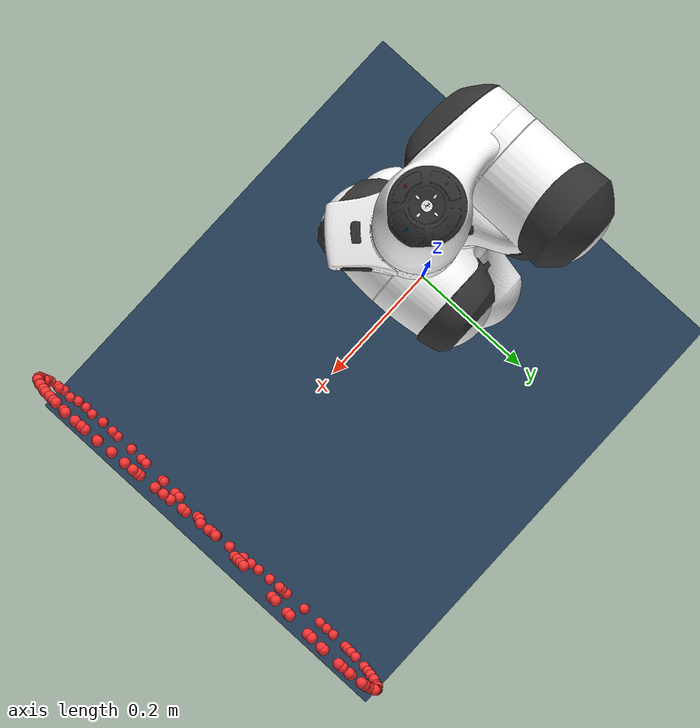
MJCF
<mujoco model="fr3 scene">
  <include file="fr3.xml"/>

  <statistic center="0.2 0 0.4" extent=".8"/>

  <visual>
    <headlight diffuse="0.6 0.6 0.6" ambient="0.3 0.3 0.3" specular="0 0 0"/>
    <rgba haze="0.15 0.25 0.35 1"/>
    <global azimuth="120" elevation="-20"/>
  </visual>

  <asset>
    <texture type="skybox" builtin="gradient" rgb1="0.3 0.5 0.7" rgb2="0 0 0" width="512" height="3072"/>
    <texture type="2d" name="groundplane" builtin="checker" mark="edge" rgb1="0.2 0.3 0.4" rgb2="0.1 0.2 0.3"
      markrgb="0.8 0.8 0.8" width="300" height="300"/>
    <material name="groundplane" texture="groundplane" texuniform="true" texrepeat="5 5" reflectance="0.2"/>
  </asset>

  <worldbody>
  <!-- Calibrated circle markers: center=(0.5999, 0.0404, 0.5322), R=0.1005 -->
  <!-- === 固定散点可视化（工具尖端轨迹）=== -->
    <body name="trace_points"  mocap="true" pos="-0.15 0 0.15">
      <!-- 提示：size=0.006 为 6mm 半径；需要更细更密，可复制下列行或改 size/rgba -->
      <site type="sphere" size="0.006" rgba="1 0.2 0.2 1"     pos="0.5985 0.0496 0.5208"/>
      <site type="sphere" size="0.006" rgba="1 0.2 0.2 1"     pos="0.5986 0.0033 0.5668"/>
      <site type="sphere" size="0.006" rgba="1 0.2 0.2 1"     pos="0.5990 -0.0538 0.6212"/>
      <site type="sphere" size="0.006" rgba="1 0.2 0.2 1"     pos="0.5998 -0.1041 0.6558"/>
      <site type="sphere" size="0.006" rgba="1 0.2 0.2 1"     pos="0.6002 -0.1478 0.6612"/>
      <site type="sphere" size="0.006" rgba="1 0.2 0.2 1"     pos="0.6004 -0.1807 0.6369"/>
      <site type="sphere" size="0.006" rgba="1 0.2 0.2 1"     pos="0.6003 -0.2001 0.5893"/>
      <site type="sphere" size="0.006" rgba="1 0.2 0.2 1"     pos="0.6002 -0.2062 0.5289"/>
      <site type="sphere" size="0.006" rgba="1 0.2 0.2 1"     pos="0.6002 -0.1987 0.4690"/>
      <site type="sphere" size="0.006" rgba="1 0.2 0.2 1"     pos="0.6000 -0.1773 0.4222"/>
      <site type="sphere" size="0.006" rgba="1 0.2 0.2 1"     pos="0.5996 -0.1420 0.4000"/>
      <site type="sphere" size="0.006" rgba="1 0.2 0.2 1"     pos="0.5993 -0.0954 0.4110"/>
      <site type="sphere" size="0.006" rgba="1 0.2 0.2 1"     pos="0.5990 -0.0405 0.4536"/>
      <site type="sphere" size="0.006" rgba="1 0.2 0.2 1"     pos="0.5983 0.0194 0.5084"/>
      <site type="sphere" size="0.006" rgba="1 0.2 0.2 1"     pos="0.5980 0.0798 0.5695"/>
      <site type="sphere" size="0.006" rgba="1 0.2 0.2 1"     pos="0.5984 0.1372 0.6216"/>
      <site type="sphere" size="0.006" rgba="1 0.2 0.2 1"     pos="0.5990 0.1888 0.6534"/>
      <site type="sphere" size="0.006" rgba="1 0.2 0.2 1"     pos="0.5995 0.2322 0.6580"/>
      <site type="sphere" size="0.006" rgba="1 0.2 0.2 1"     pos="0.5998 0.2648 0.6341"/>
      <site type="sphere" size="0.006" rgba="1 0.2 0.2 1"     pos="0.5997 0.2849 0.5870"/>
      <site type="sphere" size="0.006" rgba="1 0.2 0.2 1"     pos="0.5996 0.2909 0.5279"/>
      <site type="sphere" size="0.006" rgba="1 0.2 0.2 1"     pos="0.5995 0.2830 0.4697"/>
      <site type="sphere" size="0.006" rgba="1 0.2 0.2 1"     pos="0.5996 0.2610 0.4254"/>
      <site type="sphere" size="0.006" rgba="1 0.2 0.2 1"     pos="0.5997 0.2261 0.4055"/>
      <site type="sphere" size="0.006" rgba="1 0.2 0.2 1"     pos="0.5995 0.1804 0.4151"/>
      <site type="sphere" size="0.006" rgba="1 0.2 0.2 1"     pos="0.5990 0.1266 0.4509"/>
      <site type="sphere" size="0.006" rgba="1 0.2 0.2 1"     pos="0.5986 0.0679 0.5052"/>
      <site type="sphere" size="0.006" rgba="1 0.2 0.2 1"     pos="0.5986 0.0082 0.5658"/>
      <site type="sphere" size="0.006" rgba="1 0.2 0.2 1"     pos="0.5988 -0.0509 0.6199"/>
      <site type="sphere" size="0.006" rgba="1 0.2 0.2 1"     pos="0.5994 -0.1053 0.6533"/>
      <site type="sphere" size="0.006" rgba="1 0.2 0.2 1"     pos="0.5997 -0.1506 0.6583"/>
      <site type="sphere" size="0.006" rgba="1 0.2 0.2 1"     pos="0.5998 -0.1845 0.6343"/>
      <site type="sphere" size="0.006" rgba="1 0.2 0.2 1"     pos="0.6001 -0.2040 0.5865"/>
      <site type="sphere" size="0.006" rgba="1 0.2 0.2 1"     pos="0.6001 -0.2096 0.5268"/>
      <site type="sphere" size="0.006" rgba="1 0.2 0.2 1"     pos="0.5999 -0.2007 0.4682"/>
      <site type="sphere" size="0.006" rgba="1 0.2 0.2 1"     pos="0.5998 -0.1779 0.4244"/>
      <site type="sphere" size="0.006" rgba="1 0.2 0.2 1"     pos="0.5997 -0.1421 0.4056"/>
      <site type="sphere" size="0.006" rgba="1 0.2 0.2 1"     pos="0.5994 -0.0947 0.4166"/>
      <site type="sphere" size="0.006" rgba="1 0.2 0.2 1"     pos="0.5988 -0.0386 0.4550"/>
      <site type="sphere" size="0.006" rgba="1 0.2 0.2 1"     pos="0.5980 0.0225 0.5124"/>
      <site type="sphere" size="0.006" rgba="1 0.2 0.2 1"     pos="0.5977 0.0840 0.5745"/>
      <site type="sphere" size="0.006" rgba="1 0.2 0.2 1"     pos="0.5982 0.1422 0.6261"/>
      <site type="sphere" size="0.006" rgba="1 0.2 0.2 1"     pos="0.5989 0.1942 0.6558"/>
      <site type="sphere" size="0.006" rgba="1 0.2 0.2 1"     pos="0.5996 0.2372 0.6562"/>
      <site type="sphere" size="0.006" rgba="1 0.2 0.2 1"     pos="0.5998 0.2688 0.6281"/>
      <site type="sphere" size="0.006" rgba="1 0.2 0.2 1"     pos="0.5997 0.2870 0.5771"/>
      <site type="sphere" size="0.006" rgba="1 0.2 0.2 1"     pos="0.5995 0.2907 0.5159"/>
      <site type="sphere" size="0.006" rgba="1 0.2 0.2 1"     pos="0.5995 0.2793 0.4585"/>
      <site type="sphere" size="0.006" rgba="1 0.2 0.2 1"     pos="0.5996 0.2539 0.4183"/>
      <site type="sphere" size="0.006" rgba="1 0.2 0.2 1"     pos="0.5996 0.2154 0.4050"/>
      <site type="sphere" size="0.006" rgba="1 0.2 0.2 1"     pos="0.5993 0.1527 0.4312"/>
      <site type="sphere" size="0.006" rgba="1 0.2 0.2 1"     pos="0.5988 0.1097 0.4654"/>
      <site type="sphere" size="0.006" rgba="1 0.2 0.2 1"     pos="0.5985 0.0491 0.5243"/>
      <site type="sphere" size="0.006" rgba="1 0.2 0.2 1"     pos="0.5987 -0.0118 0.5850"/>
      <site type="sphere" size="0.006" rgba="1 0.2 0.2 1"     pos="0.5991 -0.0700 0.6334"/>
      <site type="sphere" size="0.006" rgba="1 0.2 0.2 1"     pos="0.5997 -0.1215 0.6579"/>
      <site type="sphere" size="0.006" rgba="1 0.2 0.2 1"     pos="0.5998 -0.1631 0.6533"/>
      <site type="sphere" size="0.006" rgba="1 0.2 0.2 1"     pos="0.5998 -0.1924 0.6206"/>
      <site type="sphere" size="0.006" rgba="1 0.2 0.2 1"     pos="0.5998 -0.2075 0.5674"/>
      <site type="sphere" size="0.006" rgba="1 0.2 0.2 1"     pos="0.5998 -0.2082 0.5063"/>
      <site type="sphere" size="0.006" rgba="1 0.2 0.2 1"     pos="0.5998 -0.1947 0.4513"/>
      <site type="sphere" size="0.006" rgba="1 0.2 0.2 1"     pos="0.5997 -0.1676 0.4151"/>
      <site type="sphere" size="0.006" rgba="1 0.2 0.2 1"     pos="0.6001 -0.1266 0.4035"/>
      <site type="sphere" size="0.006" rgba="1 0.2 0.2 1"     pos="0.5991 -0.0772 0.4270"/>
      <site type="sphere" size="0.006" rgba="1 0.2 0.2 1"     pos="0.5984 -0.0188 0.4731"/>
      <site type="sphere" size="0.006" rgba="1 0.2 0.2 1"     pos="0.5977 0.0429 0.5340"/>
      <site type="sphere" size="0.006" rgba="1 0.2 0.2 1"     pos="0.5976 0.0889 0.5799"/>
      <site type="sphere" size="0.006" rgba="1 0.2 0.2 1"     pos="0.5984 0.1594 0.6385"/>
      <site type="sphere" size="0.006" rgba="1 0.2 0.2 1"     pos="0.5991 0.2080 0.6592"/>
      <site type="sphere" size="0.006" rgba="1 0.2 0.2 1"     pos="0.5997 0.2473 0.6511"/>
      <site type="sphere" size="0.006" rgba="1 0.2 0.2 1"     pos="0.5998 0.2750 0.6164"/>
      <site type="sphere" size="0.006" rgba="1 0.2 0.2 1"     pos="0.5996 0.2894 0.5628"/>
      <site type="sphere" size="0.006" rgba="1 0.2 0.2 1"     pos="0.5995 0.2873 0.4878"/>
      <site type="sphere" size="0.006" rgba="1 0.2 0.2 1"     pos="0.5996 0.2478 0.4138"/>
      <site type="sphere" size="0.006" rgba="1 0.2 0.2 1"     pos="0.5994 0.1810 0.4146"/>
      <site type="sphere" size="0.006" rgba="1 0.2 0.2 1"     pos="0.5992 0.1451 0.4364"/>
      <site type="sphere" size="0.006" rgba="1 0.2 0.2 1"     pos="0.5987 0.0876 0.4858"/>
      <site type="sphere" size="0.006" rgba="1 0.2 0.2 1"     pos="0.5985 0.0278 0.5458"/>
      <site type="sphere" size="0.006" rgba="1 0.2 0.2 1"     pos="0.5988 -0.0314 0.6027"/>
      <site type="sphere" size="0.006" rgba="1 0.2 0.2 1"     pos="0.5993 -0.0867 0.6436"/>
      <site type="sphere" size="0.006" rgba="1 0.2 0.2 1"     pos="0.5997 -0.1346 0.6596"/>
      <site type="sphere" size="0.006" rgba="1 0.2 0.2 1"     pos="0.5999 -0.1725 0.6471"/>
      <site type="sphere" size="0.006" rgba="1 0.2 0.2 1"     pos="0.5997 -0.2016 0.5963"/>
      <site type="sphere" size="0.006" rgba="1 0.2 0.2 1"     pos="0.5996 -0.2090 0.5537"/>
      <site type="sphere" size="0.006" rgba="1 0.2 0.2 1"     pos="0.5997 -0.2066 0.4937"/>
      <site type="sphere" size="0.006" rgba="1 0.2 0.2 1"     pos="0.6020 -0.1862 0.4366"/>
      <site type="sphere" size="0.006" rgba="1 0.2 0.2 1"     pos="0.6017 -0.1583 0.4016"/>
      <site type="sphere" size="0.006" rgba="1 0.2 0.2 1"     pos="0.6007 -0.1185 0.4001"/>
      <site type="sphere" size="0.006" rgba="1 0.2 0.2 1"     pos="0.5991 -0.0696 0.4312"/>
      <site type="sphere" size="0.006" rgba="1 0.2 0.2 1"     pos="0.5982 -0.0119 0.4796"/>
      <site type="sphere" size="0.006" rgba="1 0.2 0.2 1"     pos="0.5976 0.0487 0.5399"/>
      <site type="sphere" size="0.006" rgba="1 0.2 0.2 1"     pos="0.5976 0.0936 0.5845"/>
      <site type="sphere" size="0.006" rgba="1 0.2 0.2 1"     pos="0.5985 0.1630 0.6408"/>
      <site type="sphere" size="0.006" rgba="1 0.2 0.2 1"     pos="0.5992 0.2110 0.6595"/>
      <site type="sphere" size="0.006" rgba="1 0.2 0.2 1"     pos="0.5998 0.2496 0.6495"/>
      <site type="sphere" size="0.006" rgba="1 0.2 0.2 1"     pos="0.5999 0.2709 0.6244"/>
      <site type="sphere" size="0.006" rgba="1 0.2 0.2 1"     pos="0.5997 0.2878 0.5733"/>
      <site type="sphere" size="0.006" rgba="1 0.2 0.2 1"     pos="0.5995 0.2913 0.5283"/>
      <site type="sphere" size="0.006" rgba="1 0.2 0.2 1"     pos="0.5995 0.2738 0.4454"/>
      <site type="sphere" size="0.006" rgba="1 0.2 0.2 1"     pos="0.5996 0.2454 0.4123"/>
      <site type="sphere" size="0.006" rgba="1 0.2 0.2 1"     pos="0.5996 0.2050 0.4063"/>
      <site type="sphere" size="0.006" rgba="1 0.2 0.2 1"     pos="0.5991 0.1413 0.4392"/>
      <site type="sphere" size="0.006" rgba="1 0.2 0.2 1"     pos="0.5987 0.0983 0.4758"/>
      <site type="sphere" size="0.006" rgba="1 0.2 0.2 1"     pos="0.5985 0.0386 0.5349"/>
      <site type="sphere" size="0.006" rgba="1 0.2 0.2 1"     pos="0.5987 -0.0209 0.5933"/>
      <site type="sphere" size="0.006" rgba="1 0.2 0.2 1"     pos="0.5991 -0.0597 0.6258"/>
      <site type="sphere" size="0.006" rgba="1 0.2 0.2 1"     pos="0.5996 -0.1267 0.6589"/>
      <site type="sphere" size="0.006" rgba="1 0.2 0.2 1"     pos="0.5999 -0.1664 0.6513"/>
      <site type="sphere" size="0.006" rgba="1 0.2 0.2 1"     pos="0.5998 -0.1939 0.6174"/>
    </body>

    <light pos="0 0 1.5" dir="0 0 -1" directional="true"/>
    <geom name="floor" size="0 0 0.05" type="plane" material="groundplane"/>
  </worldbody>
</mujoco>

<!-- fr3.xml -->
<mujoco model="fr3">
  <compiler angle="radian" meshdir="assets"/>

  <option integrator="implicitfast"/>

  <default>
    <default class="fr3">
      <!-- Overwritten in joints 5, 6, and 7. -->
      <joint damping="0.21" armature="0.195" frictionloss="1.137"/>
      <position inheritrange="1"/>
      <default class="visual">
        <geom type="mesh" group="2" contype="0" conaffinity="0"/>
      </default>
      <default class="collision">
        <geom type="mesh" group="3" mass="0" density="0"/>
      </default>
      <site size="0.001" rgba="0.5 0.5 0.5 0.3" group="4"/>
    </default>
  </default>

  <asset>
    <material name="black" rgba=".2 .2 .2 1"/>
    <material name="white" rgba="1 1 1 1"/>
    <material name="red" rgba="1 0.072272 0.039546 1"/>
    <material name="gray" rgba="0.863156 0.863156 0.863157 1"/>
    <material name="button_green" rgba="0.102241 0.571125 0.102242 1"/>
    <material name="button_red" rgba="0.520996 0.008023 0.013702 1"/>
    <material name="button_blue" rgba="0.024157 0.445201 0.737911 1"/>

    <mesh file="link0_0.obj"/>
    <mesh file="link0_1.obj"/>
    <mesh file="link0_2.obj"/>
    <mesh file="link0_3.obj"/>
    <mesh file="link0_4.obj"/>
    <mesh file="link0_5.obj"/>
    <mesh file="link0_6.obj"/>
    <mesh file="link1.obj"/>
    <mesh file="link2.obj"/>
    <mesh file="link3_0.obj"/>
    <mesh file="link3_1.obj"/>
    <mesh file="link4_0.obj"/>
    <mesh file="link4_1.obj"/>
    <mesh file="link5_0.obj"/>
    <mesh file="link5_1.obj"/>
    <mesh file="link5_2.obj"/>
    <mesh file="link6_0.obj"/>
    <mesh file="link6_1.obj"/>
    <mesh file="link6_2.obj"/>
    <mesh file="link6_3.obj"/>
    <mesh file="link6_4.obj"/>
    <mesh file="link6_5.obj"/>
    <mesh file="link6_6.obj"/>
    <mesh file="link6_7.obj"/>
    <mesh file="link7_0.obj"/>
    <mesh file="link7_1.obj"/>
    <mesh file="link7_2.obj"/>
    <mesh file="link7_3.obj"/>

    <mesh name="link0_coll" file="link0.stl"/>
    <mesh name="link1_coll" file="link1.stl"/>
    <mesh name="link2_coll" file="link2.stl"/>
    <mesh name="link3_coll" file="link3.stl"/>
    <mesh name="link4_coll" file="link4.stl"/>
    <mesh name="link5_coll" file="link5.stl"/>
    <mesh name="link6_coll" file="link6.stl"/>
    <mesh name="link7_coll" file="link7.stl"/>
  </asset>

  <worldbody>
  <!-- ======= 固定散点圈（纯视觉，标记FR3末端圆轨迹） ======= -->

    <body name="base" childclass="fr3">
      <body name="fr3_link0">
        <geom mesh="link0_0" material="black" class="visual"/>
        <geom mesh="link0_1" material="white" class="visual"/>
        <geom mesh="link0_2" material="white" class="visual"/>
        <geom mesh="link0_3" material="white" class="visual"/>
        <geom mesh="link0_4" material="white" class="visual"/>
        <geom mesh="link0_5" material="red" class="visual"/>
        <geom mesh="link0_6" material="black" class="visual"/>
        <geom name="fr3_link0_collision" mesh="link0_coll" class="collision"/>
        <body name="fr3_link1" pos="0 0 0.333">
          <inertial pos="4.128e-07 -0.0181251 -0.0386036" quat="0.998098 -0.0605364 0.00380499 0.0110109" mass="2.92747"
            diaginertia="0.0239286 0.0227246 0.00610634"/>
          <joint name="fr3_joint1" axis="0 0 1" range="-2.7437 2.7437" actuatorfrcrange="-87 87"/>
          <geom name="fr3_link1_collision" class="collision" mesh="link1_coll"/>
          <geom material="white" mesh="link1" class="visual"/>
          <body name="fr3_link2" quat="1 -1 0 0">
            <inertial pos="0.00318289 -0.0743222 0.00881461" quat="0.502599 0.584437 -0.465998 0.434366" mass="2.93554"
              diaginertia="0.0629567 0.0411924 0.0246371"/>
            <joint name="fr3_joint2" axis="0 0 1" range="-1.7837 1.7837" actuatorfrcrange="-87 87"/>
            <geom material="white" mesh="link2" class="visual"/>
            <geom name="fr3_link2_collision" class="collision" mesh="link2_coll"/>
            <body name="fr3_link3" pos="0 -0.316 0" quat="1 1 0 0">
              <inertial pos="0.0407016 -0.00482006 -0.0289731" quat="0.921025 -0.244161 0.155272 0.260745" mass="2.2449"
                diaginertia="0.0267409 0.0189869 0.0171587"/>
              <joint name="fr3_joint3" axis="0 0 1" range="-2.9007 2.9007" actuatorfrcrange="-87 87"/>
              <geom mesh="link3_0" material="white" class="visual"/>
              <geom mesh="link3_1" material="black" class="visual"/>
              <geom name="fr3_link3_collision" class="collision" mesh="link3_coll"/>
              <body name="fr3_link4" pos="0.0825 0 0" quat="1 1 0 0">
                <inertial pos="-0.0459101 0.0630493 -0.00851879" quat="0.438018 0.803311 0.00937812 0.403414"
                  mass="2.6156" diaginertia="0.05139 0.0372717 0.0160047"/>
                <joint name="fr3_joint4" axis="0 0 1" range="-3.0421 -0.1518" actuatorfrcrange="-87 87"/>
                <geom mesh="link4_0" material="white" class="visual"/>
                <geom mesh="link4_1" material="black" class="visual"/>
                <geom name="fr3_link4_collision" class="collision" mesh="link4_coll"/>
                <body name="fr3_link5" pos="-0.0825 0.384 0" quat="1 -1 0 0">
                  <inertial pos="-0.00160396 0.0292536 -0.0972966" quat="0.919031 0.125604 0.0751531 -0.366003"
                    mass="2.32712" diaginertia="0.0579335 0.0449144 0.0130634"/>
                  <joint name="fr3_joint5" axis="0 0 1" range="-2.8065 2.8065" actuatorfrcrange="-12 12"
                    armature="0.074" frictionloss="0.763"/>
                  <geom mesh="link5_0" material="white" class="visual"/>
                  <geom mesh="link5_1" material="white" class="visual"/>
                  <geom mesh="link5_2" material="black" class="visual"/>
                  <geom name="fr3_link5_collision" class="collision" mesh="link5_coll"/>
                  <body name="fr3_link6" quat="1 1 0 0">
                    <inertial pos="0.0597131 -0.0410295 -0.0101693" quat="0.621301 0.552665 0.510011 0.220081"
                      mass="1.81704" diaginertia="0.0175039 0.0161123 0.00193529"/>
                    <joint name="fr3_joint6" axis="0 0 1" range="0.5445 4.5169" actuatorfrcrange="-12 12"
                      armature="0.074" frictionloss="0.44"/>
                    <geom mesh="link6_0" material="button_green" class="visual"/>
                    <geom mesh="link6_1" material="white" class="visual"/>
                    <geom mesh="link6_2" material="white" class="visual"/>
                    <geom mesh="link6_3" material="gray" class="visual"/>
                    <geom mesh="link6_4" material="button_red" class="visual"/>
                    <geom mesh="link6_5" material="white" class="visual"/>
                    <geom mesh="link6_6" material="black" class="visual"/>
                    <geom mesh="link6_7" material="button_blue" class="visual"/>
                    <geom name="fr3_link6_collision" class="collision" mesh="link6_coll"/>
                    <body name="fr3_link7" pos="0.088 0 0" quat="1 1 0 0">
                      <inertial pos="0.00452258 0.00862619 -0.0161633" quat="0.727579 0.0978688 -0.24906 0.63168"
                        mass="0.627143" diaginertia="0.000223836 0.000223642 5.64132e-07"/>
                      <joint name="fr3_joint7" axis="0 0 1" range="-3.0159 3.0159" actuatorfrcrange="-12 12"
                        armature="0.074" frictionloss="0.248"/>
                      <geom mesh="link7_0" material="black" class="visual"/>
                      <geom mesh="link7_1" material="white" class="visual"/>
                      <geom mesh="link7_2" material="white" class="visual"/>
                      <geom mesh="link7_3" material="black" class="visual"/>
                      <geom name="fr3_link7_collision" class="collision" mesh="link7_coll"/>
                      <site name="attachment_site" pos="0 0 0.107"/>
                        <body name="tool_dyn" pos="0 0 0.107">
                          <geom name="tool_stick"
                                type="capsule"
                                fromto="0 0 0  0 0 0.07"
                                size="0.01"
                                rgba="0.1 0.7 0.9 1"
                                density="1200"
                                contype="1" conaffinity="1"/>
                          <!-- 棒尖端的标记点 -->
                          <site name="tool_tip" pos="0 0 0.20" size="0.005" rgba="1 0 0 1"/>
                        </body>

                    </body>
                  </body>
                </body>
              </body>
            </body>
          </body>
        </body>
      </body>
    </body>
  </worldbody>

  <actuator>
    <motor class="fr3" name="fr3_joint1" joint="fr3_joint1" ctrlrange="-87 87"/>
    <motor class="fr3" name="fr3_joint2" joint="fr3_joint2" ctrlrange="-87 87"/>
    <motor class="fr3" name="fr3_joint3" joint="fr3_joint3" ctrlrange="-87 87"/>
    <motor class="fr3" name="fr3_joint4" joint="fr3_joint4" ctrlrange="-87 87"/>
    <motor class="fr3" name="fr3_joint5" joint="fr3_joint5" ctrlrange="-12 12"/>
    <motor class="fr3" name="fr3_joint6" joint="fr3_joint6" ctrlrange="-12 12"/>
    <motor class="fr3" name="fr3_joint7" joint="fr3_joint7" ctrlrange="-12 12"/>
  </actuator>

  <contact>
    <exclude body1="fr3_link0" body2="fr3_link1"/>
  </contact>

  <keyframe>
    <key name="home" qpos="0 0 0 -1.57079 0 1.57079 -0.7853" ctrl="0 0 0 -1.57079 0 1.57079 -0.7853"/>
  </keyframe>
</mujoco>
